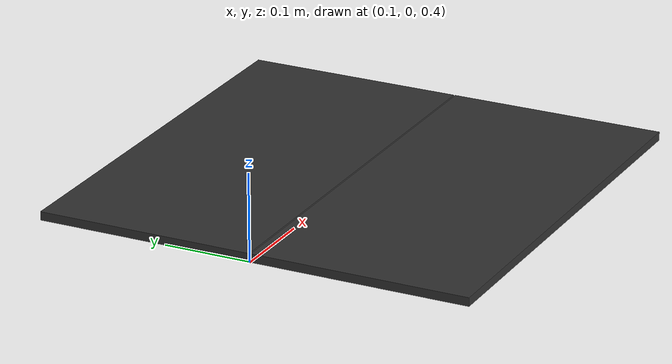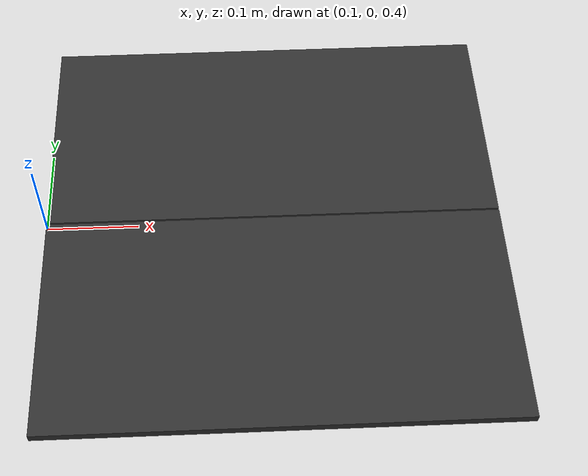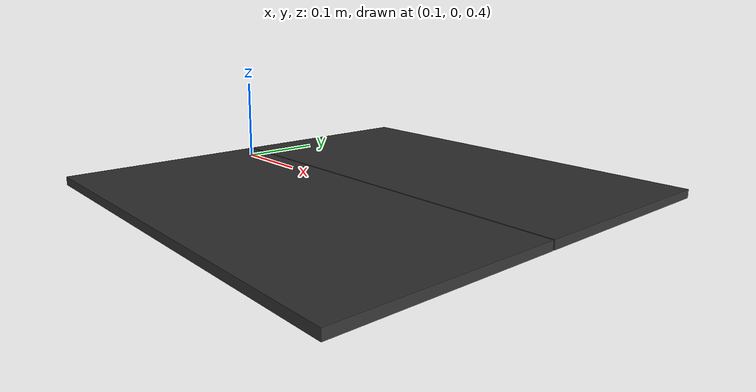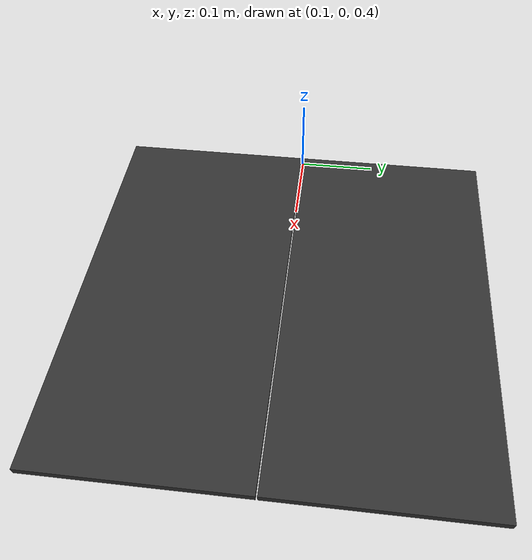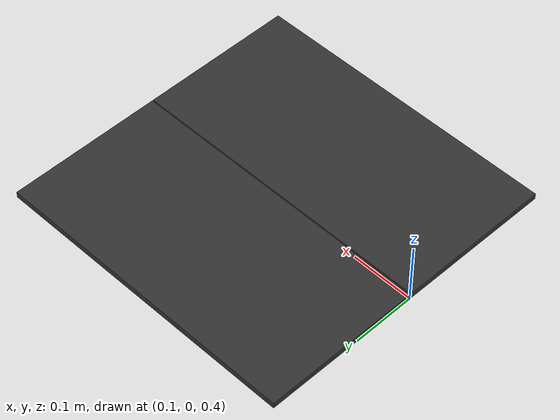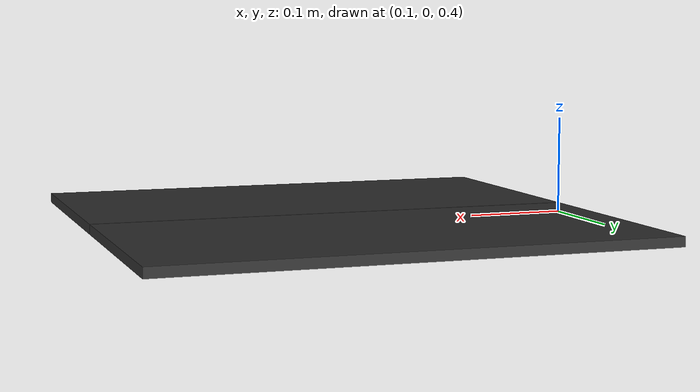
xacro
<?xml version="1.0"?>
<robot xmlns:xacro="http://www.ros.org/wiki/xacro" name="workpiece">

  <xacro:property name="plate_length" value="0.5" />
  <xacro:property name="plate_width" value="0.25" />
  <xacro:property name="plate_height" value="0.01" />

  <link name="world"/>

  <link name="plate1_link">
    <visual>
      <geometry>
        <box size="${plate_length} ${plate_width} ${plate_height}"/>
      </geometry>
      <material name="DarkGrey">
        <color rgba="0.2 0.2 0.2 1.0"/>
      </material>
    </visual>
    <collision>
      <geometry>
        <box size="${plate_length} ${plate_width} ${plate_height}"/>
      </geometry>
    </collision>
    <inertial>
      <mass value="1.0"/>
      <inertia ixx="0.1" ixy="0.0" ixz="0.0" iyy="0.1" iyz="0.0" izz="0.1"/>
    </inertial>
  </link>

  <gazebo reference="plate1_link">
    <material>Gazebo/DarkGrey</material>
  </gazebo>

  <joint name="plate1_joint" type="fixed">
    <parent link="world" />
    <child link="plate1_link" />
    <origin xyz="0.35 0.126 0.405" rpy="0 0 0"/>
  </joint>

  <link name="plate2_link">
    <visual>
      <geometry>
        <box size="${plate_length} ${plate_width} ${plate_height}"/>
      </geometry>
      <material name="DarkGrey">
        <color rgba="0.2 0.2 0.2 1.0"/>
      </material>
    </visual>
    <collision>
      <geometry>
        <box size="${plate_length} ${plate_width} ${plate_height}"/>
      </geometry>
    </collision>
    <inertial>
      <mass value="1.0"/>
      <inertia ixx="0.1" ixy="0.0" ixz="0.0" iyy="0.1" iyz="0.0" izz="0.1"/>
    </inertial>
  </link>

  <gazebo reference="plate2_link">
    <material>Gazebo/DarkGrey</material>
  </gazebo>

  <joint name="plate2_joint" type="fixed">
    <parent link="world" />
    <child link="plate2_link"/>
    <origin xyz="0.35 -0.126 0.405" rpy="0 0 0"/>
  </joint>

</robot>
